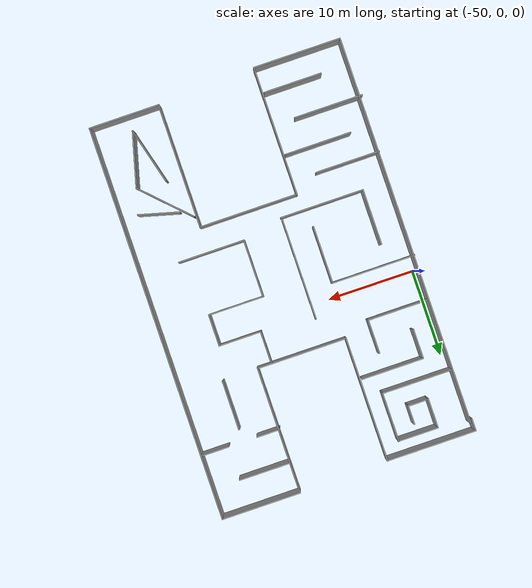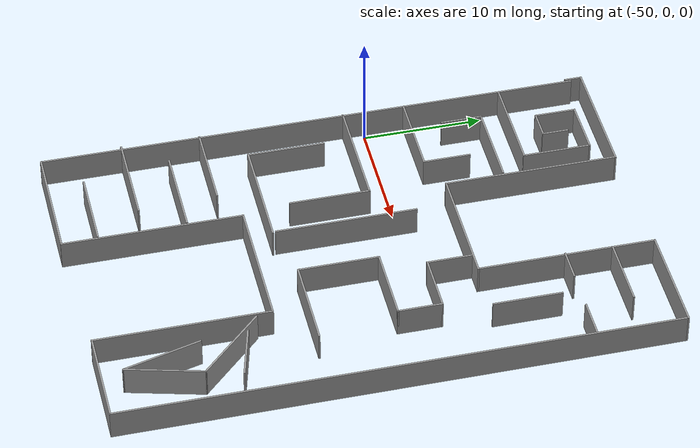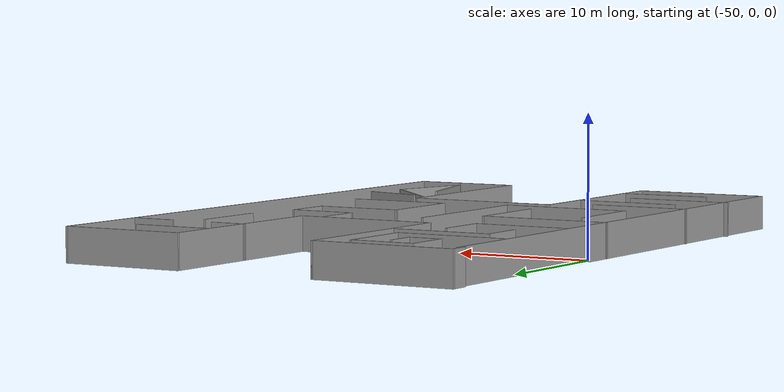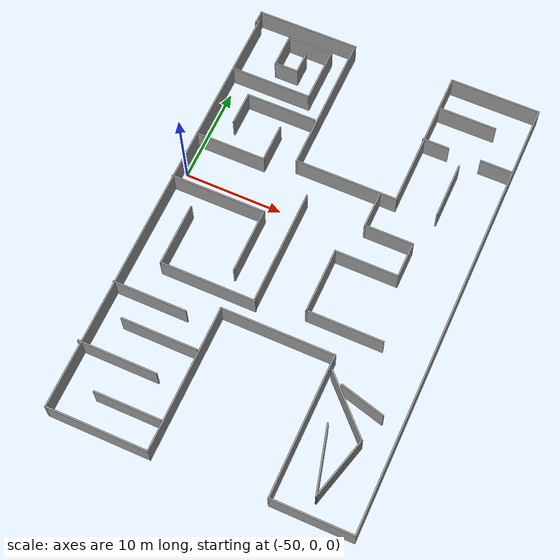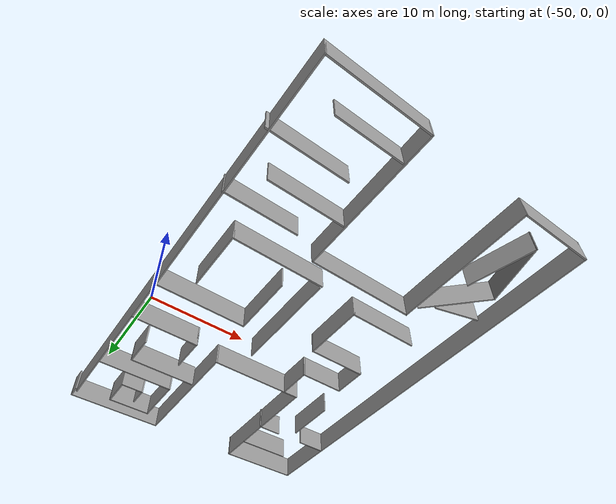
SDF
<?xml version='1.0'?>
<sdf version='1.7'>
  <model name='H'>
    <pose>-25.3984 -3.99169 0 0 -0 0</pose>
    <link name='Wall_100'>
      <collision name='Wall_100_Collision'>
        <geometry>
          <box>
            <size>3.75 0.15 2.5</size>
          </box>
        </geometry>
        <pose>0 0 1.25 0 -0 0</pose>
      </collision>
      <visual name='Wall_100_Visual'>
        <pose>0 0 1.25 0 -0 0</pose>
        <geometry>
          <box>
            <size>3.75 0.15 2.5</size>
          </box>
        </geometry>
        <material>
          <script>
            <uri>file://media/materials/scripts/gazebo.material</uri>
            <name>Gazebo/Grey</name>
          </script>
          <ambient>1 1 1 1</ambient>
        </material>
        <meta>
          <layer>0</layer>
        </meta>
      </visual>
      <pose>-1.34639 3.02241 0 0 -0 1.5708</pose>
    </link>
    <link name='Wall_101'>
      <collision name='Wall_101_Collision'>
        <geometry>
          <box>
            <size>5 0.15 2.5</size>
          </box>
        </geometry>
        <pose>0 0 1.25 0 -0 0</pose>
      </collision>
      <visual name='Wall_101_Visual'>
        <pose>0 0 1.25 0 -0 0</pose>
        <geometry>
          <box>
            <size>5 0.15 2.5</size>
          </box>
        </geometry>
        <material>
          <script>
            <uri>file://media/materials/scripts/gazebo.material</uri>
            <name>Gazebo/Grey</name>
          </script>
          <ambient>1 1 1 1</ambient>
        </material>
        <meta>
          <layer>0</layer>
        </meta>
      </visual>
      <pose>-3.77139 4.82241 0 0 -0 3.14159</pose>
    </link>
    <link name='Wall_102'>
      <collision name='Wall_102_Collision'>
        <geometry>
          <box>
            <size>3.75 0.15 2.5</size>
          </box>
        </geometry>
        <pose>0 0 1.25 0 -0 0</pose>
      </collision>
      <visual name='Wall_102_Visual'>
        <pose>0 0 1.25 0 -0 0</pose>
        <geometry>
          <box>
            <size>3.75 0.15 2.5</size>
          </box>
        </geometry>
        <material>
          <script>
            <uri>file://media/materials/scripts/gazebo.material</uri>
            <name>Gazebo/Grey</name>
          </script>
          <ambient>1 1 1 1</ambient>
        </material>
        <meta>
          <layer>0</layer>
        </meta>
      </visual>
      <pose>-6.19639 6.62241 0 0 -0 1.5708</pose>
    </link>
    <link name='Wall_104'>
      <collision name='Wall_104_Collision'>
        <geometry>
          <box>
            <size>6.75 0.15 2.5</size>
          </box>
        </geometry>
        <pose>0 0 1.25 0 -0 0</pose>
      </collision>
      <visual name='Wall_104_Visual'>
        <pose>0 0 1.25 0 -0 0</pose>
        <geometry>
          <box>
            <size>6.75 0.15 2.5</size>
          </box>
        </geometry>
        <material>
          <script>
            <uri>file://media/materials/scripts/gazebo.material</uri>
            <name>Gazebo/Grey</name>
          </script>
          <ambient>1 1 1 1</ambient>
        </material>
        <meta>
          <layer>0</layer>
        </meta>
      </visual>
      <pose>-7.69639 -2.07759 0 0 -0 -1.5708</pose>
    </link>
    <link name='Wall_105'>
      <collision name='Wall_105_Collision'>
        <geometry>
          <box>
            <size>7.75 0.15 2.5</size>
          </box>
        </geometry>
        <pose>0 0 1.25 0 -0 0</pose>
      </collision>
      <visual name='Wall_105_Visual'>
        <pose>0 0 1.25 0 -0 0</pose>
        <geometry>
          <box>
            <size>7.75 0.15 2.5</size>
          </box>
        </geometry>
        <material>
          <script>
            <uri>file://media/materials/scripts/gazebo.material</uri>
            <name>Gazebo/Grey</name>
          </script>
          <ambient>1 1 1 1</ambient>
        </material>
        <meta>
          <layer>0</layer>
        </meta>
      </visual>
      <pose>-3.89639 -5.37759 0 0 -0 0</pose>
    </link>
    <link name='Wall_40'>
      <collision name='Wall_40_Collision'>
        <geometry>
          <box>
            <size>45.25 0.15 2.5</size>
          </box>
        </geometry>
        <pose>0 0 1.25 0 -0 0</pose>
      </collision>
      <visual name='Wall_40_Visual'>
        <pose>0 0 1.25 0 -0 0</pose>
        <geometry>
          <box>
            <size>45.25 0.15 2.5</size>
          </box>
        </geometry>
        <material>
          <script>
            <uri>file://media/materials/scripts/gazebo.material</uri>
            <name>Gazebo/Grey</name>
          </script>
          <ambient>1 1 1 1</ambient>
        </material>
        <meta>
          <layer>0</layer>
        </meta>
      </visual>
      <pose>-25.0178 -0.625 0 0 -0 -1.5708</pose>
    </link>
    <link name='Wall_41'>
      <collision name='Wall_41_Collision'>
        <geometry>
          <box>
            <size>10.25 0.15 2.5</size>
          </box>
        </geometry>
        <pose>0 0 1.25 0 -0 0</pose>
      </collision>
      <visual name='Wall_41_Visual'>
        <pose>0 0 1.25 0 -0 0</pose>
        <geometry>
          <box>
            <size>10.25 0.15 2.5</size>
          </box>
        </geometry>
        <material>
          <script>
            <uri>file://media/materials/scripts/gazebo.material</uri>
            <name>Gazebo/Grey</name>
          </script>
          <ambient>1 1 1 1</ambient>
        </material>
        <meta>
          <layer>0</layer>
        </meta>
      </visual>
      <pose>-19.9678 -23.175 0 0 -0 0</pose>
    </link>
    <link name='Wall_42'>
      <collision name='Wall_42_Collision'>
        <geometry>
          <box>
            <size>15 0.15 2.5</size>
          </box>
        </geometry>
        <pose>0 0 1.25 0 -0 0</pose>
      </collision>
      <visual name='Wall_42_Visual'>
        <pose>0 0 1.25 0 -0 0</pose>
        <geometry>
          <box>
            <size>15 0.15 2.5</size>
          </box>
        </geometry>
        <material>
          <script>
            <uri>file://media/materials/scripts/gazebo.material</uri>
            <name>Gazebo/Grey</name>
          </script>
          <ambient>1 1 1 1</ambient>
        </material>
        <meta>
          <layer>0</layer>
        </meta>
      </visual>
      <pose>-14.9178 -15.75 0 0 -0 1.5708</pose>
    </link>
    <link name='Wall_43'>
      <collision name='Wall_43_Collision'>
        <geometry>
          <box>
            <size>11.5 0.15 2.5</size>
          </box>
        </geometry>
        <pose>0 0 1.25 0 -0 0</pose>
      </collision>
      <visual name='Wall_43_Visual'>
        <pose>0 0 1.25 0 -0 0</pose>
        <geometry>
          <box>
            <size>11.5 0.15 2.5</size>
          </box>
        </geometry>
        <material>
          <script>
            <uri>file://media/materials/scripts/gazebo.material</uri>
            <name>Gazebo/Grey</name>
          </script>
          <ambient>1 1 1 1</ambient>
        </material>
        <meta>
          <layer>0</layer>
        </meta>
      </visual>
      <pose>-9.24277 -8.325 0 0 -0 0</pose>
    </link>
    <link name='Wall_44'>
      <collision name='Wall_44_Collision'>
        <geometry>
          <box>
            <size>14.5 0.15 2.5</size>
          </box>
        </geometry>
        <pose>0 0 1.25 0 -0 0</pose>
      </collision>
      <visual name='Wall_44_Visual'>
        <pose>0 0 1.25 0 -0 0</pose>
        <geometry>
          <box>
            <size>14.5 0.15 2.5</size>
          </box>
        </geometry>
        <material>
          <script>
            <uri>file://media/materials/scripts/gazebo.material</uri>
            <name>Gazebo/Grey</name>
          </script>
          <ambient>1 1 1 1</ambient>
        </material>
        <meta>
          <layer>0</layer>
        </meta>
      </visual>
      <pose>-3.56777 -15.5 0 0 -0 -1.5708</pose>
    </link>
    <link name='Wall_45'>
      <collision name='Wall_45_Collision'>
        <geometry>
          <box>
            <size>8.25 0.15 2.5</size>
          </box>
        </geometry>
        <pose>0 0 1.25 0 -0 0</pose>
      </collision>
      <visual name='Wall_45_Visual'>
        <pose>0 0 1.25 0 -0 0</pose>
        <geometry>
          <box>
            <size>8.25 0.15 2.5</size>
          </box>
        </geometry>
        <material>
          <script>
            <uri>file://media/materials/scripts/gazebo.material</uri>
            <name>Gazebo/Grey</name>
          </script>
          <ambient>1 1 1 1</ambient>
        </material>
        <meta>
          <layer>0</layer>
        </meta>
      </visual>
      <pose>0.482225 -22.675 0 0 -0 0</pose>
    </link>
    <link name='Wall_46'>
      <collision name='Wall_46_Collision'>
        <geometry>
          <box>
            <size>46 0.15 2.5</size>
          </box>
        </geometry>
        <pose>0 0 1.25 0 -0 0</pose>
      </collision>
      <visual name='Wall_46_Visual'>
        <pose>0 0 1.25 0 -0 0</pose>
        <geometry>
          <box>
            <size>46 0.15 2.5</size>
          </box>
        </geometry>
        <material>
          <script>
            <uri>file://media/materials/scripts/gazebo.material</uri>
            <name>Gazebo/Grey</name>
          </script>
          <ambient>1 1 1 1</ambient>
        </material>
        <meta>
          <layer>0</layer>
        </meta>
      </visual>
      <pose>4.53223 0.250001 0 0 -0 1.5708</pose>
    </link>
    <link name='Wall_47'>
      <collision name='Wall_47_Collision'>
        <geometry>
          <box>
            <size>9.25 0.15 2.5</size>
          </box>
        </geometry>
        <pose>0 0 1.25 0 -0 0</pose>
      </collision>
      <visual name='Wall_47_Visual'>
        <pose>0 0 1.25 0 -0 0</pose>
        <geometry>
          <box>
            <size>9.25 0.15 2.5</size>
          </box>
        </geometry>
        <material>
          <script>
            <uri>file://media/materials/scripts/gazebo.material</uri>
            <name>Gazebo/Grey</name>
          </script>
          <ambient>1 1 1 1</ambient>
        </material>
        <meta>
          <layer>0</layer>
        </meta>
      </visual>
      <pose>-0.017775 23.175 0 0 -0 3.14159</pose>
    </link>
    <link name='Wall_48'>
      <collision name='Wall_48_Collision'>
        <geometry>
          <box>
            <size>14.75 0.15 2.5</size>
          </box>
        </geometry>
        <pose>0 0 1.25 0 -0 0</pose>
      </collision>
      <visual name='Wall_48_Visual'>
        <pose>0 0 1.25 0 -0 0</pose>
        <geometry>
          <box>
            <size>14.75 0.15 2.5</size>
          </box>
        </geometry>
        <material>
          <script>
            <uri>file://media/materials/scripts/gazebo.material</uri>
            <name>Gazebo/Grey</name>
          </script>
          <ambient>1 1 1 1</ambient>
        </material>
        <meta>
          <layer>0</layer>
        </meta>
      </visual>
      <pose>-4.56777 15.875 0 0 -0 -1.5708</pose>
    </link>
    <link name='Wall_49'>
      <collision name='Wall_49_Collision'>
        <geometry>
          <box>
            <size>10.5 0.15 2.5</size>
          </box>
        </geometry>
        <pose>0 0 1.25 0 -0 0</pose>
      </collision>
      <visual name='Wall_49_Visual'>
        <pose>0 0 1.25 0 -0 0</pose>
        <geometry>
          <box>
            <size>10.5 0.15 2.5</size>
          </box>
        </geometry>
        <material>
          <script>
            <uri>file://media/materials/scripts/gazebo.material</uri>
            <name>Gazebo/Grey</name>
          </script>
          <ambient>1 1 1 1</ambient>
        </material>
        <meta>
          <layer>0</layer>
        </meta>
      </visual>
      <pose>-9.74277 8.575 0 0 -0 3.14159</pose>
    </link>
    <link name='Wall_50'>
      <collision name='Wall_50_Collision'>
        <geometry>
          <box>
            <size>14.5 0.15 2.5</size>
          </box>
        </geometry>
        <pose>0 0 1.25 0 -0 0</pose>
      </collision>
      <visual name='Wall_50_Visual'>
        <pose>0 0 1.25 0 -0 0</pose>
        <geometry>
          <box>
            <size>14.5 0.15 2.5</size>
          </box>
        </geometry>
        <material>
          <script>
            <uri>file://media/materials/scripts/gazebo.material</uri>
            <name>Gazebo/Grey</name>
          </script>
          <ambient>1 1 1 1</ambient>
        </material>
        <meta>
          <layer>0</layer>
        </meta>
      </visual>
      <pose>-14.9178 15.75 0 0 -0 1.5708</pose>
    </link>
    <link name='Wall_51'>
      <collision name='Wall_51_Collision'>
        <geometry>
          <box>
            <size>10.5 0.15 2.5</size>
          </box>
        </geometry>
        <pose>0 0 1.25 0 -0 0</pose>
      </collision>
      <visual name='Wall_51_Visual'>
        <pose>0 0 1.25 0 -0 0</pose>
        <geometry>
          <box>
            <size>10.5 0.15 2.5</size>
          </box>
        </geometry>
        <material>
          <script>
            <uri>file://media/materials/scripts/gazebo.material</uri>
            <name>Gazebo/Grey</name>
          </script>
          <ambient>1 1 1 1</ambient>
        </material>
        <meta>
          <layer>0</layer>
        </meta>
      </visual>
      <pose>-20.0928 22.925 0 0 -0 3.14159</pose>
    </link>
    <link name='Wall_52'>
      <collision name='Wall_52_Collision'>
        <geometry>
          <box>
            <size>1.5 0.15 2.5</size>
          </box>
        </geometry>
        <pose>0 0 1.25 0 -0 0</pose>
      </collision>
      <visual name='Wall_52_Visual'>
        <pose>0 0 1.25 0 -0 0</pose>
        <geometry>
          <box>
            <size>1.5 0.15 2.5</size>
          </box>
        </geometry>
        <material>
          <script>
            <uri>file://media/materials/scripts/gazebo.material</uri>
            <name>Gazebo/Grey</name>
          </script>
          <ambient>1 1 1 1</ambient>
        </material>
        <meta>
          <layer>0</layer>
        </meta>
      </visual>
      <pose>-25.2678 22.25 0 0 -0 -1.5708</pose>
    </link>
    <link name='Wall_54'>
      <collision name='Wall_54_Collision'>
        <geometry>
          <box>
            <size>8.25 0.15 2.5</size>
          </box>
        </geometry>
        <pose>0 0 1.25 0 -0 0</pose>
      </collision>
      <visual name='Wall_54_Visual'>
        <pose>0 0 1.25 0 -0 0</pose>
        <geometry>
          <box>
            <size>8.25 0.15 2.5</size>
          </box>
        </geometry>
        <material>
          <script>
            <uri>file://media/materials/scripts/gazebo.material</uri>
            <name>Gazebo/Grey</name>
          </script>
          <ambient>1 1 1 1</ambient>
        </material>
        <meta>
          <layer>0</layer>
        </meta>
      </visual>
      <pose>-20.8453 15.6642 0 0 -0 0</pose>
    </link>
    <link name='Wall_55'>
      <collision name='Wall_55_Collision'>
        <geometry>
          <box>
            <size>5.75 0.15 2.5</size>
          </box>
        </geometry>
        <pose>0 0 1.25 0 -0 0</pose>
      </collision>
      <visual name='Wall_55_Visual'>
        <pose>0 0 1.25 0 -0 0</pose>
        <geometry>
          <box>
            <size>5.75 0.15 2.5</size>
          </box>
        </geometry>
        <material>
          <script>
            <uri>file://media/materials/scripts/gazebo.material</uri>
            <name>Gazebo/Grey</name>
          </script>
          <ambient>1 1 1 1</ambient>
        </material>
        <meta>
          <layer>0</layer>
        </meta>
      </visual>
      <pose>-16.7953 18.4642 0 0 -0 1.5708</pose>
    </link>
    <link name='Wall_56'>
      <collision name='Wall_56_Collision'>
        <geometry>
          <box>
            <size>4.75 0.15 2.5</size>
          </box>
        </geometry>
        <pose>0 0 1.25 0 -0 0</pose>
      </collision>
      <visual name='Wall_56_Visual'>
        <pose>0 0 1.25 0 -0 0</pose>
        <geometry>
          <box>
            <size>4.75 0.15 2.5</size>
          </box>
        </geometry>
        <material>
          <script>
            <uri>file://media/materials/scripts/gazebo.material</uri>
            <name>Gazebo/Grey</name>
          </script>
          <ambient>1 1 1 1</ambient>
        </material>
        <meta>
          <layer>0</layer>
        </meta>
      </visual>
      <pose>-19.0953 21.2642 0 0 -0 3.14159</pose>
    </link>
    <link name='Wall_57'>
      <collision name='Wall_57_Collision'>
        <geometry>
          <box>
            <size>3.5 0.15 2.5</size>
          </box>
        </geometry>
        <pose>0 0 1.25 0 -0 0</pose>
      </collision>
      <visual name='Wall_57_Visual'>
        <pose>0 0 1.25 0 -0 0</pose>
        <geometry>
          <box>
            <size>3.5 0.15 2.5</size>
          </box>
        </geometry>
        <material>
          <script>
            <uri>file://media/materials/scripts/gazebo.material</uri>
            <name>Gazebo/Grey</name>
          </script>
          <ambient>1 1 1 1</ambient>
        </material>
        <meta>
          <layer>0</layer>
        </meta>
      </visual>
      <pose>-21.3953 19.5892 0 0 -0 -1.5708</pose>
    </link>
    <link name='Wall_58'>
      <collision name='Wall_58_Collision'>
        <geometry>
          <box>
            <size>2.5 0.15 2.5</size>
          </box>
        </geometry>
        <pose>0 0 1.25 0 -0 0</pose>
      </collision>
      <visual name='Wall_58_Visual'>
        <pose>0 0 1.25 0 -0 0</pose>
        <geometry>
          <box>
            <size>2.5 0.15 2.5</size>
          </box>
        </geometry>
        <material>
          <script>
            <uri>file://media/materials/scripts/gazebo.material</uri>
            <name>Gazebo/Grey</name>
          </script>
          <ambient>1 1 1 1</ambient>
        </material>
        <meta>
          <layer>0</layer>
        </meta>
      </visual>
      <pose>-20.2203 17.9142 0 0 -0 0</pose>
    </link>
    <link name='Wall_59'>
      <collision name='Wall_59_Collision'>
        <geometry>
          <box>
            <size>2.25 0.15 2.5</size>
          </box>
        </geometry>
        <pose>0 0 1.25 0 -0 0</pose>
      </collision>
      <visual name='Wall_59_Visual'>
        <pose>0 0 1.25 0 -0 0</pose>
        <geometry>
          <box>
            <size>2.25 0.15 2.5</size>
          </box>
        </geometry>
        <material>
          <script>
            <uri>file://media/materials/scripts/gazebo.material</uri>
            <name>Gazebo/Grey</name>
          </script>
          <ambient>1 1 1 1</ambient>
        </material>
        <meta>
          <layer>0</layer>
        </meta>
      </visual>
      <pose>-19.0453 18.9642 0 0 -0 1.5708</pose>
    </link>
    <link name='Wall_61'>
      <collision name='Wall_61_Collision'>
        <geometry>
          <box>
            <size>7.5 0.15 2.5</size>
          </box>
        </geometry>
        <pose>0 0 1.25 0 -0 0</pose>
      </collision>
      <visual name='Wall_61_Visual'>
        <pose>0 0 1.25 0 -0 0</pose>
        <geometry>
          <box>
            <size>7.5 0.15 2.5</size>
          </box>
        </geometry>
        <material>
          <script>
            <uri>file://media/materials/scripts/gazebo.material</uri>
            <name>Gazebo/Grey</name>
          </script>
          <ambient>1 1 1 1</ambient>
        </material>
        <meta>
          <layer>0</layer>
        </meta>
      </visual>
      <pose>-21.4343 -9.91 0 0 -0 0</pose>
    </link>
    <link name='Wall_63'>
      <collision name='Wall_63_Collision'>
        <geometry>
          <box>
            <size>7.75 0.15 2.5</size>
          </box>
        </geometry>
        <pose>0 0 1.25 0 -0 0</pose>
      </collision>
      <visual name='Wall_63_Visual'>
        <pose>0 0 1.25 0 -0 0</pose>
        <geometry>
          <box>
            <size>7.75 0.15 2.5</size>
          </box>
        </geometry>
        <material>
          <script>
            <uri>file://media/materials/scripts/gazebo.material</uri>
            <name>Gazebo/Grey</name>
          </script>
          <ambient>1 1 1 1</ambient>
        </material>
        <meta>
          <layer>0</layer>
        </meta>
      </visual>
      <pose>-18.9579 -12.9061 0 0 -0 3.14159</pose>
    </link>
    <link name='Wall_65'>
      <collision name='Wall_65_Collision'>
        <geometry>
          <box>
            <size>8 0.15 2.5</size>
          </box>
        </geometry>
        <pose>0 0 1.25 0 -0 0</pose>
      </collision>
      <visual name='Wall_65_Visual'>
        <pose>0 0 1.25 0 -0 0</pose>
        <geometry>
          <box>
            <size>8 0.15 2.5</size>
          </box>
        </geometry>
        <material>
          <script>
            <uri>file://media/materials/scripts/gazebo.material</uri>
            <name>Gazebo/Grey</name>
          </script>
          <ambient>1 1 1 1</ambient>
        </material>
        <meta>
          <layer>0</layer>
        </meta>
      </visual>
      <pose>-21.3984 -16.4373 0 0 -0 0</pose>
    </link>
    <link name='Wall_67'>
      <collision name='Wall_67_Collision'>
        <geometry>
          <box>
            <size>6.75 0.15 2.5</size>
          </box>
        </geometry>
        <pose>0 0 1.25 0 -0 0</pose>
      </collision>
      <visual name='Wall_67_Visual'>
        <pose>0 0 1.25 0 -0 0</pose>
        <geometry>
          <box>
            <size>6.75 0.15 2.5</size>
          </box>
        </geometry>
        <material>
          <script>
            <uri>file://media/materials/scripts/gazebo.material</uri>
            <name>Gazebo/Grey</name>
          </script>
          <ambient>1 1 1 1</ambient>
        </material>
        <meta>
          <layer>0</layer>
        </meta>
      </visual>
      <pose>-18.4579 -20.1825 0 0 -0 3.14159</pose>
    </link>
    <link name='Wall_69'>
      <collision name='Wall_69_Collision'>
        <geometry>
          <box>
            <size>7.25 0.15 2.5</size>
          </box>
        </geometry>
        <pose>0 0 1.25 0 -0 0</pose>
      </collision>
      <visual name='Wall_69_Visual'>
        <pose>0 0 1.25 0 -0 0</pose>
        <geometry>
          <box>
            <size>7.25 0.15 2.5</size>
          </box>
        </geometry>
        <material>
          <script>
            <uri>file://media/materials/scripts/gazebo.material</uri>
            <name>Gazebo/Grey</name>
          </script>
          <ambient>1 1 1 1</ambient>
        </material>
        <meta>
          <layer>0</layer>
        </meta>
      </visual>
      <pose>-0.770094 -12.2062 0 0 -0 -0.785398</pose>
    </link>
    <link name='Wall_70'>
      <collision name='Wall_70_Collision'>
        <geometry>
          <box>
            <size>6.5 0.15 2.5</size>
          </box>
        </geometry>
        <pose>0 0 1.25 0 -0 0</pose>
      </collision>
      <visual name='Wall_70_Visual'>
        <pose>0 0 1.25 0 -0 0</pose>
        <geometry>
          <box>
            <size>6.5 0.15 2.5</size>
          </box>
        </geometry>
        <material>
          <script>
            <uri>file://media/materials/scripts/gazebo.material</uri>
            <name>Gazebo/Grey</name>
          </script>
          <ambient>1 1 1 1</ambient>
        </material>
        <meta>
          <layer>0</layer>
        </meta>
      </visual>
      <pose>0.918385 -17.7833 0 0 -0 -1.8326</pose>
    </link>
    <link name='Wall_71'>
      <collision name='Wall_71_Collision'>
        <geometry>
          <box>
            <size>6.75 0.15 2.5</size>
          </box>
        </geometry>
        <pose>0 0 1.25 0 -0 0</pose>
      </collision>
      <visual name='Wall_71_Visual'>
        <pose>0 0 1.25 0 -0 0</pose>
        <geometry>
          <box>
            <size>6.75 0.15 2.5</size>
          </box>
        </geometry>
        <material>
          <script>
            <uri>file://media/materials/scripts/gazebo.material</uri>
            <name>Gazebo/Grey</name>
          </script>
          <ambient>1 1 1 1</ambient>
        </material>
        <meta>
          <layer>0</layer>
        </meta>
      </visual>
      <pose>-0.757467 -17.6625 0 0 -0 1.8326</pose>
    </link>
    <link name='Wall_73'>
      <collision name='Wall_73_Collision'>
        <geometry>
          <box>
            <size>4.75 0.15 2.5</size>
          </box>
        </geometry>
        <pose>0 0 1.25 0 -0 0</pose>
      </collision>
      <visual name='Wall_73_Visual'>
        <pose>0 0 1.25 0 -0 0</pose>
        <geometry>
          <box>
            <size>4.75 0.15 2.5</size>
          </box>
        </geometry>
        <material>
          <script>
            <uri>file://media/materials/scripts/gazebo.material</uri>
            <name>Gazebo/Grey</name>
          </script>
          <ambient>1 1 1 1</ambient>
        </material>
        <meta>
          <layer>0</layer>
        </meta>
      </visual>
      <pose>0.332373 -11.2543 0 0 -0 -0.261799</pose>
    </link>
    <link name='Wall_75'>
      <collision name='Wall_75_Collision'>
        <geometry>
          <box>
            <size>2.75 0.15 2.5</size>
          </box>
        </geometry>
        <pose>0 0 1.25 0 -0 0</pose>
      </collision>
      <visual name='Wall_75_Visual'>
        <pose>0 0 1.25 0 -0 0</pose>
        <geometry>
          <box>
            <size>2.75 0.15 2.5</size>
          </box>
        </geometry>
        <material>
          <script>
            <uri>file://media/materials/scripts/gazebo.material</uri>
            <name>Gazebo/Grey</name>
          </script>
          <ambient>1 1 1 1</ambient>
        </material>
        <meta>
          <layer>0</layer>
        </meta>
      </visual>
      <pose>-3.37139 15.7712 0 0 -0 0</pose>
    </link>
    <link name='Wall_77'>
      <collision name='Wall_77_Collision'>
        <geometry>
          <box>
            <size>3.25 0.15 2.5</size>
          </box>
        </geometry>
        <pose>0 0 1.25 0 -0 0</pose>
      </collision>
      <visual name='Wall_77_Visual'>
        <pose>0 0 1.25 0 -0 0</pose>
        <geometry>
          <box>
            <size>3.25 0.15 2.5</size>
          </box>
        </geometry>
        <material>
          <script>
            <uri>file://media/materials/scripts/gazebo.material</uri>
            <name>Gazebo/Grey</name>
          </script>
          <ambient>1 1 1 1</ambient>
        </material>
        <meta>
          <layer>0</layer>
        </meta>
      </visual>
      <pose>2.87404 15.7712 0 0 -0 3.14159</pose>
    </link>
    <link name='Wall_79'>
      <collision name='Wall_79_Collision'>
        <geometry>
          <box>
            <size>6 0.15 2.5</size>
          </box>
        </geometry>
        <pose>0 0 1.25 0 -0 0</pose>
      </collision>
      <visual name='Wall_79_Visual'>
        <pose>0 0 1.25 0 -0 0</pose>
        <geometry>
          <box>
            <size>6 0.15 2.5</size>
          </box>
        </geometry>
        <material>
          <script>
            <uri>file://media/materials/scripts/gazebo.material</uri>
            <name>Gazebo/Grey</name>
          </script>
          <ambient>1 1 1 1</ambient>
        </material>
        <meta>
          <layer>0</layer>
        </meta>
      </visual>
      <pose>-1.61585 19.6702 0 0 -0 0</pose>
    </link>
    <link name='Wall_81'>
      <collision name='Wall_81_Collision'>
        <geometry>
          <box>
            <size>5.75 0.15 2.5</size>
          </box>
        </geometry>
        <pose>0 0 1.25 0 -0 0</pose>
      </collision>
      <visual name='Wall_81_Visual'>
        <pose>0 0 1.25 0 -0 0</pose>
        <geometry>
          <box>
            <size>5.75 0.15 2.5</size>
          </box>
        </geometry>
        <material>
          <script>
            <uri>file://media/materials/scripts/gazebo.material</uri>
            <name>Gazebo/Grey</name>
          </script>
          <ambient>1 1 1 1</ambient>
        </material>
        <meta>
          <layer>0</layer>
        </meta>
      </visual>
      <pose>-0.414385 11.53 0 0 -0 -1.5708</pose>
    </link>
    <link name='Wall_84'>
      <collision name='Wall_84_Collision'>
        <geometry>
          <box>
            <size>7.25 0.15 2.5</size>
          </box>
        </geometry>
        <pose>0 0 1.25 0 -0 0</pose>
      </collision>
      <visual name='Wall_84_Visual'>
        <pose>0 0 1.25 0 -0 0</pose>
        <geometry>
          <box>
            <size>7.25 0.15 2.5</size>
          </box>
        </geometry>
        <material>
          <script>
            <uri>file://media/materials/scripts/gazebo.material</uri>
            <name>Gazebo/Grey</name>
          </script>
          <ambient>1 1 1 1</ambient>
        </material>
        <meta>
          <layer>0</layer>
        </meta>
      </visual>
      <pose>-18.7711 13.44 0 0 -0 3.14159</pose>
    </link>
    <link name='Wall_86'>
      <collision name='Wall_86_Collision'>
        <geometry>
          <box>
            <size>3.5 0.15 2.5</size>
          </box>
        </geometry>
        <pose>0 0 1.25 0 -0 0</pose>
      </collision>
      <visual name='Wall_86_Visual'>
        <pose>0 0 1.25 0 -0 0</pose>
        <geometry>
          <box>
            <size>3.5 0.15 2.5</size>
          </box>
        </geometry>
        <material>
          <script>
            <uri>file://media/materials/scripts/gazebo.material</uri>
            <name>Gazebo/Grey</name>
          </script>
          <ambient>1 1 1 1</ambient>
        </material>
        <meta>
          <layer>0</layer>
        </meta>
      </visual>
      <pose>-22.3211 11.765 0 0 -0 -1.5708</pose>
    </link>
    <link name='Wall_88'>
      <collision name='Wall_88_Collision'>
        <geometry>
          <box>
            <size>7.25 0.15 2.5</size>
          </box>
        </geometry>
        <pose>0 0 1.25 0 -0 0</pose>
      </collision>
      <visual name='Wall_88_Visual'>
        <pose>0 0 1.25 0 -0 0</pose>
        <geometry>
          <box>
            <size>7.25 0.15 2.5</size>
          </box>
        </geometry>
        <material>
          <script>
            <uri>file://media/materials/scripts/gazebo.material</uri>
            <name>Gazebo/Grey</name>
          </script>
          <ambient>1 1 1 1</ambient>
        </material>
        <meta>
          <layer>0</layer>
        </meta>
      </visual>
      <pose>-21.4614 7.45257 0 0 -0 0</pose>
    </link>
    <link name='Wall_89'>
      <collision name='Wall_89_Collision'>
        <geometry>
          <box>
            <size>4 0.15 2.5</size>
          </box>
        </geometry>
        <pose>0 0 1.25 0 -0 0</pose>
      </collision>
      <visual name='Wall_89_Visual'>
        <pose>0 0 1.25 0 -0 0</pose>
        <geometry>
          <box>
            <size>4 0.15 2.5</size>
          </box>
        </geometry>
        <material>
          <script>
            <uri>file://media/materials/scripts/gazebo.material</uri>
            <name>Gazebo/Grey</name>
          </script>
          <ambient>1 1 1 1</ambient>
        </material>
        <meta>
          <layer>0</layer>
        </meta>
      </visual>
      <pose>-17.9114 9.37757 0 0 -0 1.5708</pose>
    </link>
    <link name='Wall_91'>
      <collision name='Wall_91_Collision'>
        <geometry>
          <box>
            <size>9.75 0.15 2.5</size>
          </box>
        </geometry>
        <pose>0 0 1.25 0 -0 0</pose>
      </collision>
      <visual name='Wall_91_Visual'>
        <pose>0 0 1.25 0 -0 0</pose>
        <geometry>
          <box>
            <size>9.75 0.15 2.5</size>
          </box>
        </geometry>
        <material>
          <script>
            <uri>file://media/materials/scripts/gazebo.material</uri>
            <name>Gazebo/Grey</name>
          </script>
          <ambient>1 1 1 1</ambient>
        </material>
        <meta>
          <layer>0</layer>
        </meta>
      </visual>
      <pose>-20.2923 2.27426 0 0 -0 0</pose>
    </link>
    <link name='Wall_92'>
      <collision name='Wall_92_Collision'>
        <geometry>
          <box>
            <size>6.75 0.15 2.5</size>
          </box>
        </geometry>
        <pose>0 0 1.25 0 -0 0</pose>
      </collision>
      <visual name='Wall_92_Visual'>
        <pose>0 0 1.25 0 -0 0</pose>
        <geometry>
          <box>
            <size>6.75 0.15 2.5</size>
          </box>
        </geometry>
        <material>
          <script>
            <uri>file://media/materials/scripts/gazebo.material</uri>
            <name>Gazebo/Grey</name>
          </script>
          <ambient>1 1 1 1</ambient>
        </material>
        <meta>
          <layer>0</layer>
        </meta>
      </visual>
      <pose>-15.4923 -1.02574 0 0 -0 -1.5708</pose>
    </link>
    <link name='Wall_94'>
      <collision name='Wall_94_Collision'>
        <geometry>
          <box>
            <size>6.5 0.15 2.5</size>
          </box>
        </geometry>
        <pose>0 0 1.25 0 -0 0</pose>
      </collision>
      <visual name='Wall_94_Visual'>
        <pose>0 0 1.25 0 -0 0</pose>
        <geometry>
          <box>
            <size>6.5 0.15 2.5</size>
          </box>
        </geometry>
        <material>
          <script>
            <uri>file://media/materials/scripts/gazebo.material</uri>
            <name>Gazebo/Grey</name>
          </script>
          <ambient>1 1 1 1</ambient>
        </material>
        <meta>
          <layer>0</layer>
        </meta>
      </visual>
      <pose>-22.0177 -3.24717 0 0 -0 -1.5708</pose>
    </link>
    <link name='Wall_95'>
      <collision name='Wall_95_Collision'>
        <geometry>
          <box>
            <size>9.75 0.15 2.5</size>
          </box>
        </geometry>
        <pose>0 0 1.25 0 -0 0</pose>
      </collision>
      <visual name='Wall_95_Visual'>
        <pose>0 0 1.25 0 -0 0</pose>
        <geometry>
          <box>
            <size>9.75 0.15 2.5</size>
          </box>
        </geometry>
        <material>
          <script>
            <uri>file://media/materials/scripts/gazebo.material</uri>
            <name>Gazebo/Grey</name>
          </script>
          <ambient>1 1 1 1</ambient>
        </material>
        <meta>
          <layer>0</layer>
        </meta>
      </visual>
      <pose>-17.2177 -6.42217 0 0 -0 0</pose>
    </link>
    <link name='Wall_97'>
      <collision name='Wall_97_Collision'>
        <geometry>
          <box>
            <size>11.75 0.15 2.5</size>
          </box>
        </geometry>
        <pose>0 0 1.25 0 -0 0</pose>
      </collision>
      <visual name='Wall_97_Visual'>
        <pose>0 0 1.25 0 -0 0</pose>
        <geometry>
          <box>
            <size>11.75 0.15 2.5</size>
          </box>
        </geometry>
        <material>
          <script>
            <uri>file://media/materials/scripts/gazebo.material</uri>
            <name>Gazebo/Grey</name>
          </script>
          <ambient>1 1 1 1</ambient>
        </material>
        <meta>
          <layer>0</layer>
        </meta>
      </visual>
      <pose>-12.4701 -0.340502 0 0 -0 1.5708</pose>
    </link>
    <link name='Wall_99'>
      <collision name='Wall_99_Collision'>
        <geometry>
          <box>
            <size>6.5 0.15 2.5</size>
          </box>
        </geometry>
        <pose>0 0 1.25 0 -0 0</pose>
      </collision>
      <visual name='Wall_99_Visual'>
        <pose>0 0 1.25 0 -0 0</pose>
        <geometry>
          <box>
            <size>6.5 0.15 2.5</size>
          </box>
        </geometry>
        <material>
          <script>
            <uri>file://media/materials/scripts/gazebo.material</uri>
            <name>Gazebo/Grey</name>
          </script>
          <ambient>1 1 1 1</ambient>
        </material>
        <meta>
          <layer>0</layer>
        </meta>
      </visual>
      <pose>-4.52139 1.22241 0 0 -0 0</pose>
    </link>
    <static>1</static>
  </model>
</sdf>
